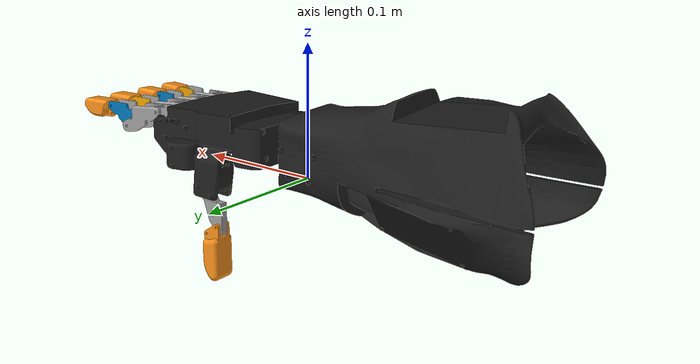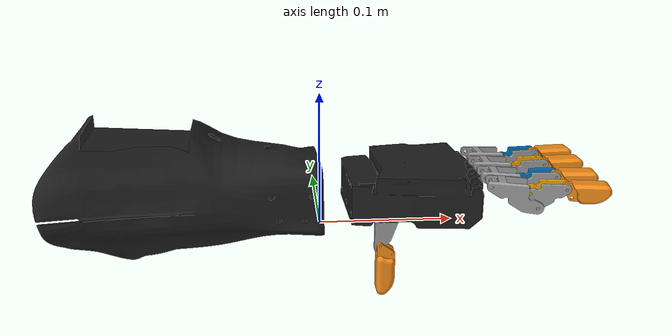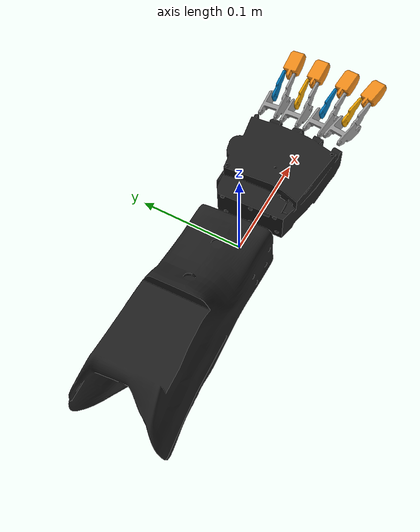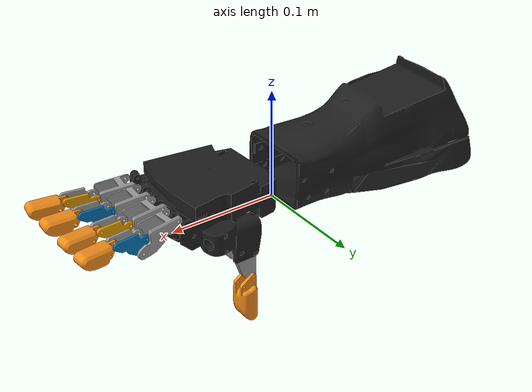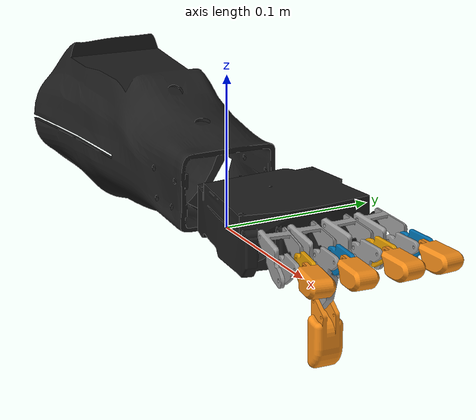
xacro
<?xml version="1.0"?>
<robot name="prosthesis" xmlns:xacro="http://www.ros.org/wiki/xacro">

  <!--File containing all the fundamental links and joints description-->
  <xacro:include filename="$(find prosthesis_description)/model/parameters.xacro" />
  <!-- File containing all the neccessary parameters for Gazebo-ROS bridge-->
  <xacro:include filename="$(find prosthesis_description)/model/gazebo.xacro" />

    <!-- ===== LINKS (base & palm unchanged) ===== -->
    <link name="world" />

    <!-- Intermediate kinematic links for base movement (x, y, z) -->
    <link name="link_base_x">
      <xacro:inertial_box mass="0.1" x="${base_length}" y="${base_width}" z="${base_depth}">
          <origin xyz="${-base_length} 0 ${base_depth/2}" rpy="0 0 0"/>
      </xacro:inertial_box>
    </link>
    <link name="link_base_y">
      <xacro:inertial_box mass="0.1" x="${base_length}" y="${base_width}" z="${base_depth}">
          <origin xyz="${-base_length} 0 ${base_depth/2}" rpy="0 0 0"/>
      </xacro:inertial_box>
    </link>
    <link name="link_base_z">
      <xacro:inertial_box mass="0.1" x="${base_length}" y="${base_width}" z="${base_depth}">
          <origin xyz="${-base_length} 0 ${base_depth/2}" rpy="0 0 0"/>
      </xacro:inertial_box>
    </link>
    <link name="link_base_roll">
      <visual>
          <origin xyz="0 0 0" rpy="0 0 1.53"/>
          <geometry><mesh filename="$(find prosthesis_description)/meshes/forearm_final.stl"/></geometry>
      </visual>
      <collision>
        <origin xyz="${-base_length/2} 0 ${base_depth/2}" rpy="0 0 0"/>
        <geometry><box size="${base_length} ${base_width} ${base_depth}"/></geometry>
      </collision>
      <xacro:inertial_box mass="0.1" x="${base_length}" y="${base_width}" z="${base_depth}">
          <origin xyz="${-base_length} 0 ${base_depth/2}" rpy="0 0 0"/>
      </xacro:inertial_box>
    </link>
    <link name="link_base_pitch">
      <xacro:inertial_box mass="0.1" x="${base_length}" y="${base_width}" z="${base_depth}">
          <origin xyz="${-base_length} 0 ${base_depth/2}" rpy="0 0 0"/>
      </xacro:inertial_box>
    </link>
    <link name="link_base_yaw">
      <xacro:inertial_box mass="0.1" x="${base_length}" y="${base_width}" z="${base_depth}">
          <origin xyz="${-base_length} 0 ${base_depth/2}" rpy="0 0 0"/>
      </xacro:inertial_box>
    </link>

    <xacro:property name="wrist_radius" value="0.01" />

    <link name="link_wrist_x">
      <collision>
          <origin xyz="${wrist_radius} 0 0" rpy="0 0 0"/>
          <geometry><sphere radius="${wrist_radius}"/></geometry>
      </collision>
      <xacro:inertial_sphere mass="0.05" radius="${wrist_radius}">
          <origin xyz="${wrist_radius} 0 0" rpy="0 0 0"/>
      </xacro:inertial_sphere>
    </link>
    <link name="link_wrist_y">
      <xacro:inertial_sphere mass="0.05" radius="${wrist_radius}">
          <origin xyz="${wrist_radius} 0 0" rpy="0 0 0"/>
      </xacro:inertial_sphere>
    </link>

    <link name="palm_link">
      <visual>
        <origin xyz="0 0 0" rpy="1.57 3.14 -1.53"/>
        <geometry><mesh filename="$(find prosthesis_description)/meshes/Palm_main_body.stl"/></geometry>
      </visual>
      <collision>
        <origin xyz="${palm_length/2} 0 ${palm_depth/2}" rpy="0 0 0"/>
        <geometry><box size="${palm_length} ${palm_width} ${palm_depth}"/></geometry>
      </collision>
      <xacro:inertial_box mass="0.2" x="${palm_length}" y="${palm_width}" z="${palm_depth}">
          <origin xyz="${palm_length} 0 ${palm_depth}" rpy="0 0 0"/>
      </xacro:inertial_box>
    </link>

    <!-- ===== FINGER & THUMB LINKS (all boxes 0.02 x 0.05 x 0.02) ===== -->
    <!-- Index -->

    <link name="link_index_1">
      <visual>
          <origin xyz="0 0 0" rpy="0 0 0"/>
          <geometry><mesh filename="$(find prosthesis_description)/meshes/A_PhalangeConstruction_Part_3.stl"/></geometry>
      </visual>
      <collision>
        <origin xyz="${finger_proximal_length/2} ${finger_proximal_width/2} ${-finger_proximal_depth/2}" rpy="0 0 0"/>
        <geometry><box size="${finger_proximal_length} ${finger_proximal_width} ${finger_proximal_depth}"/></geometry>
      </collision>
      <xacro:inertial_box mass="0.01" x="${finger_proximal_length}" y="${finger_proximal_width}" z="${finger_proximal_depth}">
          <origin xyz="${finger_proximal_length} ${finger_proximal_width} ${-finger_proximal_depth}" rpy="0 0 0"/>
      </xacro:inertial_box>
    </link>

    <link name="link_index_2">
      <visual>
          <origin xyz="0 0 0" rpy="0 0 0"/>
          <geometry><mesh filename="$(find prosthesis_description)/meshes/A_PhalangeConstruction_Part_4.stl"/></geometry>
      </visual>
      <collision>
        <origin xyz="${finger_middle_length/2 - 0.001} ${finger_middle_width/4} ${finger_middle_depth/2}" rpy="0 0 0"/>
        <geometry><box size="${finger_middle_length} ${finger_middle_width} ${finger_middle_depth}"/></geometry>
      </collision>
      <xacro:inertial_box mass="0.02" x="${finger_middle_length}" y="${finger_middle_width}" z="${finger_middle_depth}">
          <origin xyz="${finger_middle_length} ${finger_middle_width} ${finger_middle_depth}" rpy="0 0 0"/>
      </xacro:inertial_box>
    </link>

    <link name="link_index_2_b">
      <visual>
          <origin xyz="0 0 0" rpy="0 0 0"/>
          <geometry><mesh filename="$(find prosthesis_description)/meshes/A_PhalangeConstruction_Part_4.stl"/></geometry>
      </visual>
    </link>

    <link name="link_index_3">
      <visual>
          <origin xyz="0 0 0" rpy="-1.57 0 1.57"/>
          <geometry><mesh filename="$(find prosthesis_description)/meshes/A_PhalangeConstruction_Part_6.stl"/></geometry>
      </visual>
      <collision>
        <origin xyz="${finger_distal_length/2 + 0.001} 0 ${-finger_distal_depth/2}" rpy="0 0 0"/>
        <geometry><box size="${finger_distal_length} ${finger_distal_width} ${finger_distal_depth}"/></geometry>
      </collision>
      <xacro:inertial_box mass="0.02" x="${finger_distal_length}" y="${finger_distal_width}" z="${finger_distal_depth}">
          <origin xyz="${finger_distal_length} ${finger_distal_width/2} ${finger_distal_depth}" rpy="0 0 0"/>
      </xacro:inertial_box>
    </link>

    <!-- Middle -->

    <link name="link_middle_1">
      <visual>
          <origin xyz="0 0 0" rpy="0 0 0"/>
          <geometry><mesh filename="$(find prosthesis_description)/meshes/A_PhalangeConstruction_Part_3.stl"/></geometry>
      </visual>
      <collision>
        <origin xyz="${finger_proximal_length/2} ${finger_proximal_width/2} ${-finger_proximal_depth/2}" rpy="0 0 0"/>
        <geometry><box size="${finger_proximal_length} ${finger_proximal_width} ${finger_proximal_depth}"/></geometry>
      </collision>
      <xacro:inertial_box mass="0.01" x="${finger_proximal_length}" y="${finger_proximal_width}" z="${finger_proximal_depth}">
          <origin xyz="${finger_proximal_length} ${finger_proximal_width} ${-finger_proximal_depth}" rpy="0 0 0"/>
      </xacro:inertial_box>
    </link>

    <link name="link_middle_2">
      <visual>
          <origin xyz="0 0 0" rpy="0 0 00"/>
          <geometry><mesh filename="$(find prosthesis_description)/meshes/A_PhalangeConstruction_Part_4.stl"/></geometry>
      </visual>
      <collision>
        <origin xyz="${finger_middle_length/2 - 0.001} ${finger_middle_width/4} ${finger_middle_depth/2}" rpy="0 0 0"/>
        <geometry><box size="${finger_middle_length} ${finger_middle_width} ${finger_middle_depth}"/></geometry>
      </collision>
      <xacro:inertial_box mass="0.02" x="${finger_middle_length}" y="${finger_middle_width}" z="${finger_middle_depth}">
          <origin xyz="${finger_middle_length} ${finger_middle_width} ${finger_middle_depth}" rpy="0 0 0"/>
      </xacro:inertial_box>
    </link>

    <link name="link_middle_2_b">
      <visual>
          <origin xyz="0 0 0" rpy="0 0 0"/>
          <geometry><mesh filename="$(find prosthesis_description)/meshes/A_PhalangeConstruction_Part_4.stl"/></geometry>
      </visual>
    </link>

    <link name="link_middle_3">
      <visual>
          <origin xyz="0 0 0" rpy="-1.57 0 1.57"/>
          <geometry><mesh filename="$(find prosthesis_description)/meshes/A_PhalangeConstruction_Part_6.stl"/></geometry>
      </visual>
      <collision>
        <origin xyz="${finger_distal_length/2 + 0.001} 0 ${-finger_distal_depth/2}" rpy="0 0 0"/>
        <geometry><box size="${finger_distal_length} ${finger_distal_width} ${finger_distal_depth}"/></geometry>
      </collision>
      <xacro:inertial_box mass="0.02" x="${finger_distal_length}" y="${finger_distal_width}" z="${finger_distal_depth}">
          <origin xyz="${finger_distal_length} ${finger_distal_width/2} ${finger_distal_depth}" rpy="0 0 0"/>
      </xacro:inertial_box>
    </link>

    <!-- Ring -->

    <link name="link_ring_1">
      <visual>
          <origin xyz="0 0 0" rpy="0 0 0"/>
          <geometry><mesh filename="$(find prosthesis_description)/meshes/A_PhalangeConstruction_Part_3.stl"/></geometry>
      </visual>
      <collision>
        <origin xyz="${finger_proximal_length/2} ${finger_proximal_width/2} ${-finger_proximal_depth/2}" rpy="0 0 0"/>
        <geometry><box size="${finger_proximal_length} ${finger_proximal_width} ${finger_proximal_depth}"/></geometry>
      </collision>
      <xacro:inertial_box mass="0.01" x="${finger_proximal_length}" y="${finger_proximal_width}" z="${finger_proximal_depth}">
          <origin xyz="${finger_proximal_length} ${finger_proximal_width} ${-finger_proximal_depth}" rpy="0 0 0"/>
      </xacro:inertial_box>
    </link>

    <link name="link_ring_2">
      <visual>
          <origin xyz="0 0 0" rpy="0 0 0"/>
          <geometry><mesh filename="$(find prosthesis_description)/meshes/A_PhalangeConstruction_Part_4.stl"/></geometry>
      </visual>
      <collision>
        <origin xyz="${finger_middle_length/2 - 0.001} ${finger_middle_width/4} ${finger_middle_depth/2}" rpy="0 0 0"/>
        <geometry><box size="${finger_middle_length} ${finger_middle_width} ${finger_middle_depth}"/></geometry>
      </collision>
      <xacro:inertial_box mass="0.02" x="${finger_middle_length}" y="${finger_middle_width}" z="${finger_middle_depth}">
          <origin xyz="${finger_middle_length} ${finger_middle_width} ${finger_middle_depth}" rpy="0 0 0"/>
      </xacro:inertial_box>
    </link>

    <link name="link_ring_2_b">
      <visual>
          <origin xyz="0 0 0" rpy="0 0 0"/>
          <geometry><mesh filename="$(find prosthesis_description)/meshes/A_PhalangeConstruction_Part_4.stl"/></geometry>
      </visual>
    </link>

    <link name="link_ring_3">
      <visual>
          <origin xyz="0 0 0" rpy="-1.57 0 1.57"/>
          <geometry><mesh filename="$(find prosthesis_description)/meshes/A_PhalangeConstruction_Part_6.stl"/></geometry>
      </visual>
      <collision>
        <origin xyz="${finger_distal_length/2 + 0.001} 0 ${-finger_distal_depth/2}" rpy="0 0 0"/>
        <geometry><box size="${finger_distal_length} ${finger_distal_width} ${finger_distal_depth}"/></geometry>
      </collision>
      <xacro:inertial_box mass="0.02" x="${finger_distal_length}" y="${finger_distal_width}" z="${finger_distal_depth}">
          <origin xyz="${finger_distal_length} ${finger_distal_width/2} ${finger_distal_depth}" rpy="0 0 0"/>
      </xacro:inertial_box>
    </link>

    <!-- Little -->

    <link name="link_little_1">
      <visual>
          <origin xyz="0 0 0" rpy="0 0 0"/>
          <geometry><mesh filename="$(find prosthesis_description)/meshes/A_PhalangeConstruction_Part_3.stl"/></geometry>
      </visual>
      <collision>
        <origin xyz="${finger_proximal_length/2} ${finger_proximal_width/2} ${-finger_proximal_depth/2}" rpy="0 0 0"/>
        <geometry><box size="${finger_proximal_length} ${finger_proximal_width} ${finger_proximal_depth}"/></geometry>
      </collision>
      <xacro:inertial_box mass="0.01" x="${finger_proximal_length}" y="${finger_proximal_width}" z="${finger_proximal_depth}">
          <origin xyz="${finger_proximal_length} ${finger_proximal_width} ${-finger_proximal_depth}" rpy="0 0 0"/>
      </xacro:inertial_box>
    </link>

    <link name="link_little_2">
      <visual>
          <origin xyz="0 0 0" rpy="0 0 0"/>
          <geometry><mesh filename="$(find prosthesis_description)/meshes/A_PhalangeConstruction_Part_4.stl"/></geometry>
      </visual>
      <collision>
        <origin xyz="${finger_middle_length/2 - 0.001} ${finger_middle_width/4} ${finger_middle_depth/2}" rpy="0 0 0"/>
        <geometry><box size="${finger_middle_length} ${finger_middle_width} ${finger_middle_depth}"/></geometry>
      </collision>
      <xacro:inertial_box mass="0.02" x="${finger_middle_length}" y="${finger_middle_width}" z="${finger_middle_depth}">
          <origin xyz="${finger_middle_length} ${finger_middle_width} ${finger_middle_depth}" rpy="0 0 0"/>
      </xacro:inertial_box>
    </link>

    <link name="link_little_2_b">
      <visual>
          <origin xyz="0 0 0" rpy="0 0 0"/>
          <geometry><mesh filename="$(find prosthesis_description)/meshes/A_PhalangeConstruction_Part_4.stl"/></geometry>
      </visual>
    </link>

    <link name="link_little_3">
      <visual>
          <origin xyz="0 0 0" rpy="-1.57 0 1.57"/>
          <geometry><mesh filename="$(find prosthesis_description)/meshes/A_PhalangeConstruction_Part_6.stl"/></geometry>
      </visual>
      <collision>
        <origin xyz="${finger_distal_length/2 + 0.001} 0 ${-finger_distal_depth/2}" rpy="0 0 0"/>
        <geometry><box size="${finger_distal_length} ${finger_distal_width} ${finger_distal_depth}"/></geometry>
      </collision>
      <xacro:inertial_box mass="0.02" x="${finger_distal_length}" y="${finger_distal_width}" z="${finger_distal_depth}">
          <origin xyz="${finger_distal_length} ${finger_distal_width/2} ${finger_distal_depth}" rpy="0 0 0"/>
      </xacro:inertial_box>
    </link>

    <!-- Thumb -->

    <link name="link_thumb_1_x">
      <visual>
          <origin xyz="0 0 0" rpy="0 1.57 0"/>
          <geometry><mesh filename="$(find prosthesis_description)/meshes/SupportThumb.stl"/></geometry>
      </visual>
      <collision>
          <origin xyz="${-thumb_metacarpal_length} 0 0" rpy="0 1.57 0"/>
          <geometry><box size="${thumb_metacarpal_length} ${thumb_metacarpal_width} ${thumb_metacarpal_depth}"/></geometry>
      </collision>
      <xacro:inertial_box mass="0.01" x="${thumb_metacarpal_length}" y="${thumb_metacarpal_width}" z="${thumb_metacarpal_depth}">
          <origin xyz="${-thumb_metacarpal_length/2} ${thumb_metacarpal_width/2} ${thumb_metacarpal_depth/2}" rpy="0 0 0"/>
      </xacro:inertial_box>
    </link>
    <link name="link_thumb_1_y">
      <xacro:inertial_box mass="0.01" x="${thumb_metacarpal_length}" y="${thumb_metacarpal_width}" z="${thumb_metacarpal_depth}">
          <origin xyz="${-thumb_metacarpal_length/2} ${thumb_metacarpal_width/2} ${thumb_metacarpal_depth/2}" rpy="0 0 0"/>
      </xacro:inertial_box>
    </link>

    <link name="link_thumb_2">
      <visual>
          <origin xyz="0 0 0" rpy="0 1.57 3.14"/>
          <geometry><mesh filename="$(find prosthesis_description)/meshes/PhalangeThumbPart1.stl"/></geometry>
      </visual>
      <collision>
          <origin xyz="-0.003 0 -0.003" rpy="0 1.57 0"/>
          <geometry><box size="${thumb_proximal_length} ${thumb_proximal_width} ${thumb_proximal_depth}"/></geometry>
      </collision>
      <xacro:inertial_box mass="0.01" x="${thumb_proximal_length}" y="${thumb_proximal_width}" z="${thumb_proximal_depth}">
          <origin xyz="${thumb_proximal_length/2} ${thumb_proximal_width/2} ${thumb_proximal_depth/2}" rpy="0 0 0"/>
      </xacro:inertial_box>
    </link>

    <link name="link_thumb_3">
      <visual>
          <origin xyz="0 0 0" rpy="0 1.57 -1.57"/>
          <geometry><mesh filename="$(find prosthesis_description)/meshes/PhalangeThumbPart3.stl"/></geometry>
      </visual>
      <collision>
          <origin xyz="0 ${-thumb_distal_width/2} ${thumb_distal_depth}" rpy="0 1.57 0"/>
          <geometry><box size="${thumb_distal_length} ${thumb_distal_width} ${thumb_distal_depth}"/></geometry>
      </collision>
      <xacro:inertial_box mass="0.01" x="${thumb_distal_length}" y="${thumb_distal_width}" z="${thumb_distal_depth}">
          <origin xyz="0 ${-thumb_distal_width} ${thumb_distal_depth*(3/4)}" rpy="0 0 0"/>
      </xacro:inertial_box>
    </link>

    <!-- ===== JOINTS ===== -->
    <!-- World → Base X (prismatic joint for x-axis motion) -->
    <joint name="joint_base_x" type="prismatic">
          <origin xyz="0 0 0" rpy="0 0 0"/>
          <parent link="world"/>
          <child link="link_base_x"/>
          <axis xyz="1 0 0"/>
          <limit lower="-1000" upper="1000" effort="100" velocity="4"/>
    </joint>

    <!-- Base X → Base Y (prismatic joint for y-axis motion) -->
    <joint name="joint_base_y" type="prismatic">
          <origin xyz="0 0 0" rpy="0 0 0"/>
          <parent link="link_base_x"/>
          <child link="link_base_y"/>
          <axis xyz="0 1 0"/>
          <limit lower="-1000" upper="1000" effort="100" velocity="4"/>
    </joint>

    <!-- Base Y → Base Link (prismatic joint for z-axis motion) -->
    <joint name="joint_base_z" type="prismatic">
          <origin xyz="0 0 0" rpy="0 0 0"/>
          <parent link="link_base_y"/>
          <child link="link_base_z"/>
          <axis xyz="0 0 1"/>
          <limit lower="-1000" upper="1000" effort="100" velocity="4"/>
    </joint>

    <!-- Base Y → Base Link (revolute joint for yaw motion - applied first for world frame) -->
    <joint name="joint_base_yaw" type="revolute">
          <origin xyz="0 0 0" rpy="0 0 0"/>
          <parent link="link_base_z"/>
          <child link="link_base_yaw"/>
          <axis xyz="0 0 1"/>
          <limit lower="-1.57" upper="1.57" effort="100" velocity="4"/>
    </joint>

    <!-- Base P → Base Link (revolute joint for pitch motion - applied second for world frame) -->
    <joint name="joint_base_pitch" type="revolute">
          <origin xyz="0 0 0" rpy="0 0 0"/>
          <parent link="link_base_yaw"/>
          <child link="link_base_pitch"/>
          <axis xyz="0 1 0"/>
          <limit lower="-1.57" upper="1.57" effort="100" velocity="4"/>
    </joint>

    <!-- Base R → Base Link (revolute joint for roll motion - applied last for world frame) -->
    <joint name="joint_base_roll" type="revolute">
          <origin xyz="0 0 0" rpy="0 0 0"/>
          <parent link="link_base_pitch"/>
          <child link="link_base_roll"/>
          <axis xyz="1 0 0"/>
          <limit lower="-1.57" upper="1.57" effort="100" velocity="4"/>
    </joint>

    <!-- Base → Wrist -->
    <joint name="joint_base_to_wrist" type="fixed">
      <parent link="link_base_roll"/>
      <child  link="link_wrist_x"/>
      <origin xyz="0 0 ${wrist_radius}" rpy="0 0 0"/>
    </joint>

    <!-- Wrist → Palm -->
    <joint name="joint_wrist_x" type="revolute">
      <parent link="link_wrist_x"/>
      <child  link="link_wrist_y"/>
      <origin xyz="${wrist_radius*2} 0 0" rpy="0 0 0"/>
      <axis xyz="1 0 0"/>
      <limit lower="-1.57" upper="1.57" effort="5" velocity="5"/>
    </joint>
    <joint name="joint_wrist_y" type="revolute">
      <parent link="link_wrist_y"/>
      <child  link="palm_link"/>
      <origin xyz="0 0 0" rpy="0 0 0"/>
      <axis xyz="0 1 0"/>
      <limit lower="-1.57" upper="1.57" effort="5" velocity="5"/>
    </joint>

    <!-- Index -->
    <joint name="joint_index_1" type="revolute">
      <parent link="palm_link"/><child link="link_index_1"/>
      <origin xyz="0.1 0.025 0.03" rpy="0 0 0.1"/><axis xyz="0 1 0"/>
      <limit lower="0.0" upper="1.57" effort="3" velocity="5"/>
    </joint>
    <joint name="joint_index_2" type="revolute">
      <parent link="link_index_1"/><child link="link_index_2"/>
      <origin xyz="0.0327 0.005 -0.0133" rpy="0 0 0"/><axis xyz="0 1 0"/>
      <limit lower="0.0" upper="1.57" effort="2" velocity="5"/>
    </joint>
    <joint name="joint_index_2_b" type="fixed">
      <parent link="link_index_2"/><child link="link_index_2_b"/>
      <origin xyz="0 0.01 0" rpy="0 0 0"/><axis xyz="0 1 0"/>
    </joint>
    <joint name="joint_index_3" type="revolute">
      <parent link="link_index_2"/>
      <child link="link_index_3"/>
      <origin xyz="0.02 0.003 0.013" rpy="0 0 0"/><axis xyz="0 1 0"/>
      <limit lower="0.0" upper="1.57" effort="2" velocity="5"/>
    </joint>

    <!-- Middle -->
    <joint name="joint_middle_1" type="revolute">
      <parent link="palm_link"/><child link="link_middle_1"/>
      <origin xyz="0.1 0.003 0.03" rpy="0 0 0.05"/><axis xyz="0 1 0"/>
      <limit lower="0.0" upper="1.57" effort="3" velocity="5"/>
    </joint>
    <joint name="joint_middle_2" type="revolute">
      <parent link="link_middle_1"/><child link="link_middle_2"/>
      <origin xyz="0.0327 0.005 -0.0133" rpy="0 0 0"/><axis xyz="0 1 0"/>
      <limit lower="0.0" upper="1.57" effort="2" velocity="5"/>
    </joint>
    <joint name="joint_middle_2_b" type="fixed">
      <parent link="link_middle_2"/><child link="link_middle_2_b"/>
      <origin xyz="0 0.01 0" rpy="0 0 0"/><axis xyz="0 1 0"/>
    </joint>
    <joint name="joint_middle_3" type="revolute">
      <parent link="link_middle_2"/><child link="link_middle_3"/>
      <origin xyz="0.02 0.003 0.013" rpy="0 0 0"/><axis xyz="0 1 0"/>
      <limit lower="0.0" upper="1.57" effort="2" velocity="5"/>
    </joint>

    <!-- Ring -->
    <joint name="joint_ring_1" type="revolute">
      <parent link="palm_link"/><child link="link_ring_1"/>
      <origin xyz="0.1 -0.02 0.03" rpy="0 0 -0.05"/><axis xyz="0 1 0"/>
      <limit lower="0.0" upper="1.57" effort="3" velocity="5"/>
    </joint>
    <joint name="joint_ring_2" type="revolute">
      <parent link="link_ring_1"/><child link="link_ring_2"/>
      <origin xyz="0.0327 0.005 -0.0133" rpy="0 0 0"/><axis xyz="0 1 0"/>
      <limit lower="0.0" upper="1.57" effort="2" velocity="5"/>
    </joint>
    <joint name="joint_ring_2_b" type="fixed">
      <parent link="link_ring_2"/><child link="link_ring_2_b"/>
      <origin xyz="0 0.01 0" rpy="0 0 0"/><axis xyz="0 1 0"/>
    </joint>
    <joint name="joint_ring_3" type="revolute">
      <parent link="link_ring_2"/><child link="link_ring_3"/>
      <origin xyz="0.02 0.003 0.013" rpy="0 0 0"/><axis xyz="0 1 0"/>
      <limit lower="0.0" upper="1.57" effort="2" velocity="5"/>
    </joint>

    <!-- Little -->
    <joint name="joint_little_1" type="revolute">
      <parent link="palm_link"/><child link="link_little_1"/>
      <origin xyz="0.1 -0.04 0.03" rpy="0 0 -0.15"/><axis xyz="0 1 0"/>
      <limit lower="0.0" upper="1.57" effort="3" velocity="5"/>
    </joint>
    <joint name="joint_little_2" type="revolute">
      <parent link="link_little_1"/><child link="link_little_2"/>
      <origin xyz="0.0327 0.005 -0.0133" rpy="0 0 0"/><axis xyz="0 1 0"/>
      <limit lower="0.0" upper="1.57" effort="2" velocity="5"/>
    </joint>
    <joint name="joint_little_2_b" type="fixed">
      <parent link="link_little_2"/><child link="link_little_2_b"/>
      <origin xyz="0 0.01 0" rpy="0 0 0"/><axis xyz="0 1 0"/>
    </joint>
    <joint name="joint_little_3" type="revolute">
      <parent link="link_little_2"/><child link="link_little_3"/>
      <origin xyz="0.02 0.003 0.013" rpy="0 0 0"/><axis xyz="0 1 0"/>
      <limit lower="0.0" upper="1.57" effort="2" velocity="5"/>
    </joint>

    <!-- Thumb -->
    <joint name="joint_thumb_1_x" type="revolute">
      <parent link="palm_link"/><child link="link_thumb_1_x"/>
      <origin xyz="0.05 0.04 0.001" rpy="0 0 0"/><axis xyz="-1 0 0"/>
      <limit lower="0" upper="1.57" effort="3" velocity="5"/>
    </joint>
    <joint name="joint_thumb_1_y" type="revolute">
      <parent link="link_thumb_1_x"/><child link="link_thumb_1_y"/>
      <origin xyz="0 0 0" rpy="0 0 0"/><axis xyz="0 -1 0"/>
      <limit lower="0" upper="1.57" effort="3" velocity="5"/>
    </joint>
    <joint name="joint_thumb_2" type="revolute">
      <parent link="link_thumb_1_y"/><child link="link_thumb_2"/>
      <origin xyz="-0.0055 -0.003 -0.016" rpy="0 0 0"/><axis xyz="0 -1 0"/>
      <limit lower="0.0" upper="1.57" effort="2" velocity="5"/>
    </joint>
    <joint name="joint_thumb_3" type="revolute">
      <parent link="link_thumb_2"/><child link="link_thumb_3"/>
      <origin xyz="-0.003 0.009 -0.04" rpy="0 0 0"/><axis xyz="0 -1 0"/>
      <limit lower="0.0" upper="1.57" effort="2" velocity="5"/>
    </joint>

      <!-- ===== ROS2 CONTROL INTERFACE ===== -->
  <!-- Tells control_manager what hardware plugin to instanciate,
   which joint exists and which interface each joint exposes -->

  <ros2_control name="GazeboSimROS2ControlPlugin" type="system">

    <hardware>
      <plugin>gz_ros2_control/GazeboSimSystem</plugin>
    </hardware>

    <!-- Base Movement Joints (x, y, z, r, p, y) -->
    <joint name="joint_base_x">
      <command_interface name="position"/> <!-- command controller will send for position control -->
      <state_interface name="position"/>  <!-- state controller can read -->
      <state_interface name="velocity"/>
      <state_interface name="effort"/>
    </joint>
    <joint name="joint_base_y">
      <command_interface name="position"/>
      <state_interface name="position"/>
      <state_interface name="velocity"/>
      <state_interface name="effort"/>
    </joint>
    <joint name="joint_base_z">
      <command_interface name="position"/>
      <state_interface name="position"/>
      <state_interface name="velocity"/>
      <state_interface name="effort"/>
    </joint>
    <joint name="joint_base_roll">
      <command_interface name="position"/>
      <state_interface name="position"/>
      <state_interface name="velocity"/>
      <state_interface name="effort"/>
    </joint>
    <joint name="joint_base_pitch">
      <command_interface name="position"/>
      <state_interface name="position"/>
      <state_interface name="velocity"/>
      <state_interface name="effort"/>
    </joint>
    <joint name="joint_base_yaw">
      <command_interface name="position"/>
      <state_interface name="position"/>
      <state_interface name="velocity"/>
      <state_interface name="effort"/>
    </joint>

    <!-- Wrist Joint -->
    <joint name="joint_wrist_x">
      <command_interface name="position"/>
      <state_interface name="position"/>
      <state_interface name="velocity"/>
      <state_interface name="effort"/>
    </joint>
    <joint name="joint_wrist_y">
      <command_interface name="position"/>
      <state_interface name="position"/>
      <state_interface name="velocity"/>
      <state_interface name="effort"/>
    </joint>

    <!-- Index Finger Joints -->
    <joint name="joint_index_1">
      <command_interface name="position"/>
      <state_interface name="position"/>
      <state_interface name="velocity"/>
      <state_interface name="effort"/>
    </joint>
    <joint name="joint_index_2">
      <command_interface name="position"/>
      <state_interface name="position"/>
      <state_interface name="velocity"/>
      <state_interface name="effort"/>
    </joint>
    <joint name="joint_index_3">
      <command_interface name="position"/>
      <state_interface name="position"/>
      <state_interface name="velocity"/>
      <state_interface name="effort"/>
    </joint>

    <!-- Middle Finger Joints -->
    <joint name="joint_middle_1">
      <command_interface name="position"/>
      <state_interface name="position"/>
      <state_interface name="velocity"/>
      <state_interface name="effort"/>
    </joint>
    <joint name="joint_middle_2">
      <command_interface name="position"/>
      <state_interface name="position"/>
      <state_interface name="velocity"/>
      <state_interface name="effort"/>
    </joint>
    <joint name="joint_middle_3">
      <command_interface name="position"/>
      <state_interface name="position"/>
      <state_interface name="velocity"/>
      <state_interface name="effort"/>
    </joint>

    <!-- Ring Finger Joints -->
    <joint name="joint_ring_1">
      <command_interface name="position"/>
      <state_interface name="position"/>
      <state_interface name="velocity"/>
      <state_interface name="effort"/>
    </joint>
    <joint name="joint_ring_2">
      <command_interface name="position"/>
      <state_interface name="position"/>
      <state_interface name="velocity"/>
      <state_interface name="effort"/>
    </joint>
    <joint name="joint_ring_3">
      <command_interface name="position"/>
      <state_interface name="position"/>
      <state_interface name="velocity"/>
      <state_interface name="effort"/>
    </joint>

    <!-- Little Finger Joints -->
    <joint name="joint_little_1">
      <command_interface name="position"/>
      <state_interface name="position"/>
      <state_interface name="velocity"/>
      <state_interface name="effort"/>
    </joint>
    <joint name="joint_little_2">
      <command_interface name="position"/>
      <state_interface name="position"/>
      <state_interface name="velocity"/>
      <state_interface name="effort"/>
    </joint>
    <joint name="joint_little_3">
      <command_interface name="position"/>
      <state_interface name="position"/>
      <state_interface name="velocity"/>
      <state_interface name="effort"/>
    </joint>

    <!-- Thumb Joints -->
    <joint name="joint_thumb_1_x">
      <command_interface name="position"/>
      <state_interface name="position"/>
      <state_interface name="velocity"/>
      <state_interface name="effort"/>
    </joint>
    <joint name="joint_thumb_1_y">
      <command_interface name="position"/>
      <state_interface name="position"/>
      <state_interface name="velocity"/>
      <state_interface name="effort"/>
    </joint>
    <joint name="joint_thumb_2">
      <command_interface name="position"/>
      <state_interface name="position"/>
      <state_interface name="velocity"/>
      <state_interface name="effort"/>
    </joint>
    <joint name="joint_thumb_3">
      <command_interface name="position"/>
      <state_interface name="position"/>
      <state_interface name="velocity"/>
      <state_interface name="effort"/>
    </joint>

  </ros2_control>

</robot>

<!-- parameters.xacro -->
<robot name="prosthesis" xmlns:xacro="http://www.ros.org/wiki/xacro">
    <!-- File containing all useful values for the robot description -->
    <!-- ==== PROSTHESIS VALUES ==== -->

    <!-- Dimensions for each link -->
    <xacro:property name="base_length" value="0.19" />
    <xacro:property name="base_width" value="0.069" />
    <xacro:property name="base_depth" value="0.051" />
    <xacro:property name="palm_length" value="0.092" />
    <xacro:property name="palm_width" value="0.096" />
    <xacro:property name="palm_depth" value="0.03" />
    <xacro:property name="finger_proximal_length" value="0.028" />
    <xacro:property name="finger_proximal_width" value="0.015" />
    <xacro:property name="finger_proximal_depth" value="0.015" />
    <xacro:property name="finger_middle_length" value="0.02" />
    <xacro:property name="finger_middle_width" value="0.015" />
    <xacro:property name="finger_middle_depth" value="0.015" />
    <xacro:property name="finger_distal_length" value="0.025" />
    <xacro:property name="finger_distal_width" value="0.015" />
    <xacro:property name="finger_distal_depth" value="0.015" />
    <xacro:property name="thumb_metacarpal_length" value="0.01" />
    <xacro:property name="thumb_metacarpal_width" value="0.015" />
    <xacro:property name="thumb_metacarpal_depth" value="0.015" />
    <xacro:property name="thumb_proximal_length" value="0.025" />
    <xacro:property name="thumb_proximal_width" value="0.015" />
    <xacro:property name="thumb_proximal_depth" value="0.015" />
    <xacro:property name="thumb_distal_length" value="0.020" />
    <xacro:property name="thumb_distal_width" value="0.015" />
    <xacro:property name="thumb_distal_depth" value="0.015" />

    <!-- MCP X and Y positions for each finger relative to palm_link -->
    <xacro:property name="mcp_x" value="${palm_length}" />
    <xacro:property name="finger_width" value="${finger_proximal_width}" />
    <xacro:property name="spacing_area" value="${palm_width - finger_width * 4}"/>
    <xacro:property name="d" value="${spacing_area / 5}"/>

    <xacro:property name="index_mcp_y" value="${-palm_width / 2 + d + finger_width / 2}" />
    <xacro:property name="middle_mcp_y" value="${-palm_width / 2 + d*2 + finger_width*1.5}" />
    <xacro:property name="ring_mcp_y" value="${-palm_width / 2 + d*3 + finger_width*2.5}" />
    <xacro:property name="little_mcp_y" value="${-palm_width / 2 + d*4 + finger_width*3.5}" />

    <!-- density is to be determined for each mesh,
    then mass needs to be computed using mesh's geometry. And so for each link-->
    <xacro:property name="material_density" value="2710.0"/>
    <xacro:property name="mass" value="0.2"/>

    <!-- ===== MATERIAL DEFINITIONS ===== -->

    <material name="white">
        <color rgba="1 1 1 1"/>
    </material>

    <material name="orange">
        <color rgba="1 0.3 0.1 1"/>
    </material>

    <material name="blue">
        <color rgba="0.2 0.2 1 1"/>
    </material>

    <material name="green">
        <color rgba="0.2 1 0.2 1"/>
    </material>

    <!-- ==== STANDARD MOMENTS OF INERTIA https://en.wikipedia.org/wiki/List_of_moments_of_inertia ====-->

    <xacro:macro name="inertial_sphere" params="mass radius *origin">
        <inertial>
            <xacro:insert_block name="origin"/>
            <mass value="${mass}" />
            <inertia ixx="${(2/5) * mass * (radius*radius)}" ixy="0.0" ixz="0.0"
                    iyy="${(2/5) * mass * (radius*radius)}" iyz="0.0"
                    izz="${(2/5) * mass * (radius*radius)}" />
        </inertial>
    </xacro:macro>

    <xacro:macro name="inertial_box" params="mass x y z *origin">
        <inertial>
            <xacro:insert_block name="origin"/>
            <mass value="${mass}" />
            <inertia ixx="${(1/12) * mass * (y*y+z*z)}" ixy="0.0" ixz="0.0"
                    iyy="${(1/12) * mass * (x*x+z*z)}" iyz="0.0"
                    izz="${(1/12) * mass * (x*x+y*y)}" />
        </inertial>
    </xacro:macro>

    <xacro:macro name="inertial_cylinder" params="mass length radius *origin">
        <inertial>
            <xacro:insert_block name="origin"/>
            <mass value="${mass}" />
            <inertia ixx="${(1/12) * mass * (3*radius*radius + length*length)}" ixy="0.0" ixz="0.0"
                    iyy="${(1/12) * mass * (3*radius*radius + length*length)}" iyz="0.0"
                    izz="${(1/2) * mass * (radius*radius)}" />
        </inertial>
    </xacro:macro>

    <!-- ==== GAZEBO TAGS ==== -->
    <xacro:property name="base_wrist_friction" value="0.8" />
    <xacro:property name="palm_fingers_friction" value="1" />
    <xacro:property name="rigid_stiffness_default" value="1000000" />
    <xacro:property name="damping_default" value="200" />
    <xacro:property name="min_depth_default" value="0.001" />
    <xacro:property name="max_velocity_default" value="1" />

</robot>
